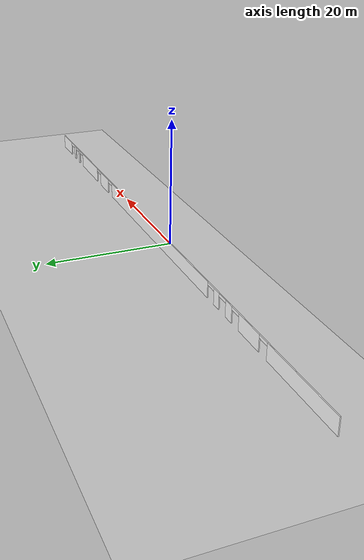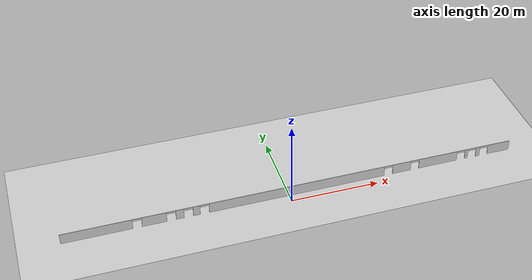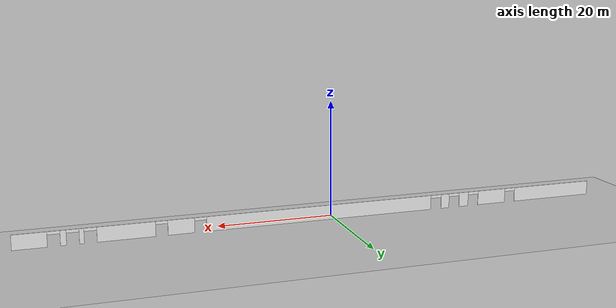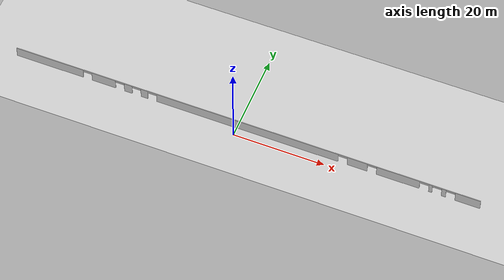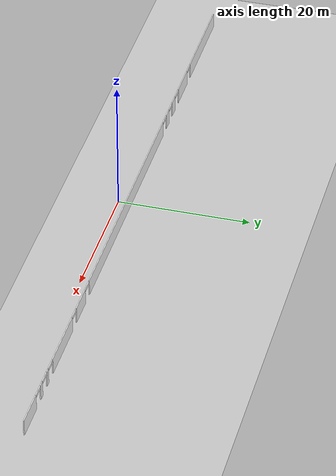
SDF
<sdf version="1.6">
 <world name="default">
  <model name="ground_plane">
   <static>1</static>
   <link name="link">
    <collision name="collision">
     <geometry><plane><normal>0 0 1</normal><size>500 500</size></plane></geometry>
     <surface>
      <contact><collide_bitmask>65535</collide_bitmask></contact>
      <friction><ode><mu>100</mu><mu2>50</mu2></ode></friction>
     </surface>
    </collision>
    <visual name="visual">
     <cast_shadows>0</cast_shadows>
     <geometry><plane><normal>0 0 1</normal><size>100 100</size></plane></geometry>
     <material>
      <script><uri>file://media/materials/scripts/gazebo.material</uri><name>Gazebo/Grey</name></script>
     </material>
    </visual>
   </link>
  </model>
  <model name="wall_with_door_ex1">
   <link name="wall_with_door::Wall_2">
    <pose>0 2 0 0 -0 0</pose>
    <visual name="Wall_2_Visual_0">
     <pose>-42.3645 0 1.25 0 -0 0</pose>
     <geometry><box><size>15.271 0.15 2.5</size></box></geometry>
     <material>
      <script>
       <uri>model://floor/materials/scripts</uri>
       <uri>model://floor/materials/textures</uri>
       <name>floor</name>
      </script>
      <ambient>1 1 1 1</ambient>
     </material>
     <meta><layer>0</layer></meta>
    </visual>
    <collision name="Wall_2_Collision_0">
     <geometry><box><size>15.271 0.15 2.5</size></box></geometry>
     <pose>-42.3645 0 1.25 0 -0 0</pose>
    </collision>
    <visual name="Wall_2_Visual_1">
     <pose>-30.0405 0 1.25 0 -0 0</pose>
     <geometry><box><size>5.377 0.15 2.5</size></box></geometry>
     <material>
      <script>
       <uri>model://floor/materials/scripts</uri>
       <uri>model://floor/materials/textures</uri>
       <name>floor</name>
      </script>
      <ambient>1 1 1 1</ambient>
     </material>
     <meta><layer>0</layer></meta>
    </visual>
    <collision name="Wall_2_Collision_1">
     <geometry><box><size>5.377 0.15 2.5</size></box></geometry>
     <pose>-30.0405 0 1.25 0 -0 0</pose>
    </collision>
    <visual name="Wall_2_Visual_2">
     <pose>-24.472 0 1.25 0 -0 0</pose>
     <geometry><box><size>1.76 0.15 2.5</size></box></geometry>
     <material>
      <script>
       <uri>model://floor/materials/scripts</uri>
       <uri>model://floor/materials/textures</uri>
       <name>floor</name>
      </script>
      <ambient>1 1 1 1</ambient>
     </material>
     <meta><layer>0</layer></meta>
    </visual>
    <collision name="Wall_2_Collision_2">
     <geometry><box><size>1.76 0.15 2.5</size></box></geometry>
     <pose>-24.472 0 1.25 0 -0 0</pose>
    </collision>
    <visual name="Wall_2_Visual_3">
     <pose>-20.8175 0 1.25 0 -0 0</pose>
     <geometry><box><size>1.549 0.15 2.5</size></box></geometry>
     <material>
      <script>
       <uri>model://floor/materials/scripts</uri>
       <uri>model://floor/materials/textures</uri>
       <name>floor</name>
      </script>
      <ambient>1 1 1 1</ambient>
     </material>
     <meta><layer>0</layer></meta>
    </visual>
    <collision name="Wall_2_Collision_3">
     <geometry><box><size>1.549 0.15 2.5</size></box></geometry>
     <pose>-20.8175 0 1.25 0 -0 0</pose>
    </collision>
    <visual name="Wall_2_Visual_4">
     <pose>2.1425 0 1.25 0 -0 0</pose>
     <geometry><box><size>40.371 0.15 2.5</size></box></geometry>
     <material>
      <script>
       <uri>model://floor/materials/scripts</uri>
       <uri>model://floor/materials/textures</uri>
       <name>floor</name>
      </script>
      <ambient>1 1 1 1</ambient>
     </material>
     <meta><layer>0</layer></meta>
    </visual>
    <collision name="Wall_2_Collision_4">
     <geometry><box><size>40.371 0.15 2.5</size></box></geometry>
     <pose>2.1425 0 1.25 0 -0 0</pose>
    </collision>
    <visual name="Wall_2_Visual_5">
     <pose>26.519 0 1.25 0 -0 0</pose>
     <geometry><box><size>4.382 0.15 2.5</size></box></geometry>
     <material>
      <script>
       <uri>model://floor/materials/scripts</uri>
       <uri>model://floor/materials/textures</uri>
       <name>floor</name>
      </script>
      <ambient>1 1 1 1</ambient>
     </material>
     <meta><layer>0</layer></meta>
    </visual>
    <collision name="Wall_2_Collision_5">
     <geometry><box><size>4.382 0.15 2.5</size></box></geometry>
     <pose>26.519 0 1.25 0 -0 0</pose>
    </collision>
    <visual name="Wall_2_Visual_6">
     <pose>35.369 0 1.25 0 -0 0</pose>
     <geometry><box><size>9.318 0.15 2.5</size></box></geometry>
     <material>
      <script>
       <uri>model://floor/materials/scripts</uri>
       <uri>model://floor/materials/textures</uri>
       <name>floor</name>
      </script>
      <ambient>1 1 1 1</ambient>
     </material>
     <meta><layer>0</layer></meta>
    </visual>
    <collision name="Wall_2_Collision_6">
     <geometry><box><size>9.318 0.15 2.5</size></box></geometry>
     <pose>35.369 0 1.25 0 -0 0</pose>
    </collision>
    <visual name="Wall_2_Visual_7">
     <pose>42.4015 0 1.25 0 -0 0</pose>
     <geometry><box><size>0.747 0.15 2.5</size></box></geometry>
     <material>
      <script>
       <uri>model://floor/materials/scripts</uri>
       <uri>model://floor/materials/textures</uri>
       <name>floor</name>
      </script>
      <ambient>1 1 1 1</ambient>
     </material>
     <meta><layer>0</layer></meta>
    </visual>
    <collision name="Wall_2_Collision_7">
     <geometry><box><size>0.747 0.15 2.5</size></box></geometry>
     <pose>42.4015 0 1.25 0 -0 0</pose>
    </collision>
    <visual name="Wall_2_Visual_8">
     <pose>45.239 0 1.25 0 -0 0</pose>
     <geometry><box><size>0.928 0.15 2.5</size></box></geometry>
     <material>
      <script>
       <uri>model://floor/materials/scripts</uri>
       <uri>model://floor/materials/textures</uri>
       <name>floor</name>
      </script>
      <ambient>1 1 1 1</ambient>
     </material>
     <meta><layer>0</layer></meta>
    </visual>
    <collision name="Wall_2_Collision_8">
     <geometry><box><size>0.928 0.15 2.5</size></box></geometry>
     <pose>45.239 0 1.25 0 -0 0</pose>
    </collision>
    <visual name="Wall_2_Visual_9">
     <pose>50.4005 0 1.25 0 -0 0</pose>
     <geometry><box><size>5.395 0.15 2.5</size></box></geometry>
     <material>
      <script>
       <uri>model://floor/materials/scripts</uri>
       <uri>model://floor/materials/textures</uri>
       <name>floor</name>
      </script>
      <ambient>1 1 1 1</ambient>
     </material>
     <meta><layer>0</layer></meta>
    </visual>
    <collision name="Wall_2_Collision_9">
     <geometry><box><size>5.395 0.15 2.5</size></box></geometry>
     <pose>50.4005 0 1.25 0 -0 0</pose>
    </collision>
    <visual name="Door_2_Visual_0">
     <pose>-33.729 0 2.25 0 -0 0</pose>
     <geometry><box><size>2 0.15 0.5</size></box></geometry>
     <material>
      <script>
       <uri>model://floor/materials/scripts</uri>
       <uri>model://floor/materials/textures</uri>
       <name>floor</name>
      </script>
      <ambient>1 1 1 1</ambient>
     </material>
     <meta><layer>0</layer></meta>
    </visual>
    <collision name="Door_2_Collision_0">
     <geometry><box><size>2 0.15 0.5</size></box></geometry>
     <pose>-33.729 0 2.25 0 -0 0</pose>
    </collision>
    <visual name="Door_2_Visual_1">
     <pose>-26.352 0 2.25 0 -0 0</pose>
     <geometry><box><size>2 0.15 0.5</size></box></geometry>
     <material>
      <script>
       <uri>model://floor/materials/scripts</uri>
       <uri>model://floor/materials/textures</uri>
       <name>floor</name>
      </script>
      <ambient>1 1 1 1</ambient>
     </material>
     <meta><layer>0</layer></meta>
    </visual>
    <collision name="Door_2_Collision_1">
     <geometry><box><size>2 0.15 0.5</size></box></geometry>
     <pose>-26.352 0 2.25 0 -0 0</pose>
    </collision>
    <visual name="Door_2_Visual_2">
     <pose>-22.592 0 2.25 0 -0 0</pose>
     <geometry><box><size>2 0.15 0.5</size></box></geometry>
     <material>
      <script>
       <uri>model://floor/materials/scripts</uri>
       <uri>model://floor/materials/textures</uri>
       <name>floor</name>
      </script>
      <ambient>1 1 1 1</ambient>
     </material>
     <meta><layer>0</layer></meta>
    </visual>
    <collision name="Door_2_Collision_2">
     <geometry><box><size>2 0.15 0.5</size></box></geometry>
     <pose>-22.592 0 2.25 0 -0 0</pose>
    </collision>
    <visual name="Door_2_Visual_3">
     <pose>-19.043 0 2.25 0 -0 0</pose>
     <geometry><box><size>2 0.15 0.5</size></box></geometry>
     <material>
      <script>
       <uri>model://floor/materials/scripts</uri>
       <uri>model://floor/materials/textures</uri>
       <name>floor</name>
      </script>
      <ambient>1 1 1 1</ambient>
     </material>
     <meta><layer>0</layer></meta>
    </visual>
    <collision name="Door_2_Collision_3">
     <geometry><box><size>2 0.15 0.5</size></box></geometry>
     <pose>-19.043 0 2.25 0 -0 0</pose>
    </collision>
    <visual name="Door_2_Visual_4">
     <pose>23.328 0 2.25 0 -0 0</pose>
     <geometry><box><size>2 0.15 0.5</size></box></geometry>
     <material>
      <script>
       <uri>model://floor/materials/scripts</uri>
       <uri>model://floor/materials/textures</uri>
       <name>floor</name>
      </script>
      <ambient>1 1 1 1</ambient>
     </material>
     <meta><layer>0</layer></meta>
    </visual>
    <collision name="Door_2_Collision_4">
     <geometry><box><size>2 0.15 0.5</size></box></geometry>
     <pose>23.328 0 2.25 0 -0 0</pose>
    </collision>
    <visual name="Door_2_Visual_5">
     <pose>29.71 0 2.25 0 -0 0</pose>
     <geometry><box><size>2 0.15 0.5</size></box></geometry>
     <material>
      <script>
       <uri>model://floor/materials/scripts</uri>
       <uri>model://floor/materials/textures</uri>
       <name>floor</name>
      </script>
      <ambient>1 1 1 1</ambient>
     </material>
     <meta><layer>0</layer></meta>
    </visual>
    <collision name="Door_2_Collision_5">
     <geometry><box><size>2 0.15 0.5</size></box></geometry>
     <pose>29.71 0 2.25 0 -0 0</pose>
    </collision>
    <visual name="Door_2_Visual_6">
     <pose>41.028 0 2.25 0 -0 0</pose>
     <geometry><box><size>2 0.15 0.5</size></box></geometry>
     <material>
      <script>
       <uri>model://floor/materials/scripts</uri>
       <uri>model://floor/materials/textures</uri>
       <name>floor</name>
      </script>
      <ambient>1 1 1 1</ambient>
     </material>
     <meta><layer>0</layer></meta>
    </visual>
    <collision name="Door_2_Collision_6">
     <geometry><box><size>2 0.15 0.5</size></box></geometry>
     <pose>41.028 0 2.25 0 -0 0</pose>
    </collision>
    <visual name="Door_2_Visual_7">
     <pose>43.775 0 2.25 0 -0 0</pose>
     <geometry><box><size>2 0.15 0.5</size></box></geometry>
     <material>
      <script>
       <uri>model://floor/materials/scripts</uri>
       <uri>model://floor/materials/textures</uri>
       <name>floor</name>
      </script>
      <ambient>1 1 1 1</ambient>
     </material>
     <meta><layer>0</layer></meta>
    </visual>
    <collision name="Door_2_Collision_7">
     <geometry><box><size>2 0.15 0.5</size></box></geometry>
     <pose>43.775 0 2.25 0 -0 0</pose>
    </collision>
    <visual name="Door_2_Visual_8">
     <pose>46.703 0 2.25 0 -0 0</pose>
     <geometry><box><size>2 0.15 0.5</size></box></geometry>
     <material>
      <script>
       <uri>model://floor/materials/scripts</uri>
       <uri>model://floor/materials/textures</uri>
       <name>floor</name>
      </script>
      <ambient>1 1 1 1</ambient>
     </material>
     <meta><layer>0</layer></meta>
    </visual>
    <collision name="Door_2_Collision_8">
     <geometry><box><size>2 0.15 0.5</size></box></geometry>
     <pose>46.703 0 2.25 0 -0 0</pose>
    </collision>
   </link>
   <static>1</static>
  </model>
 </world>
</sdf>
